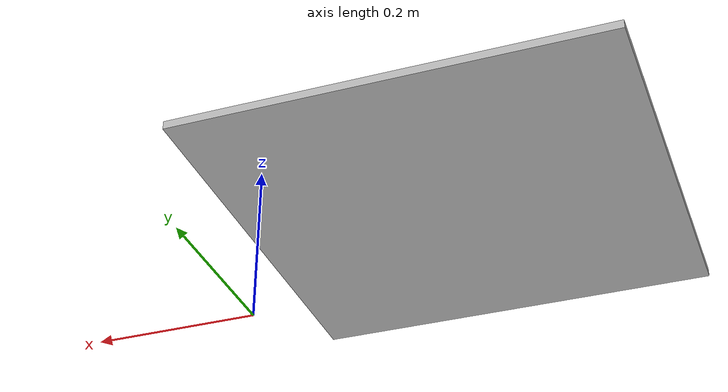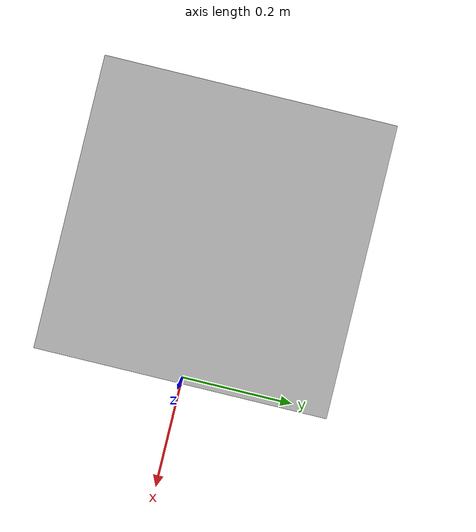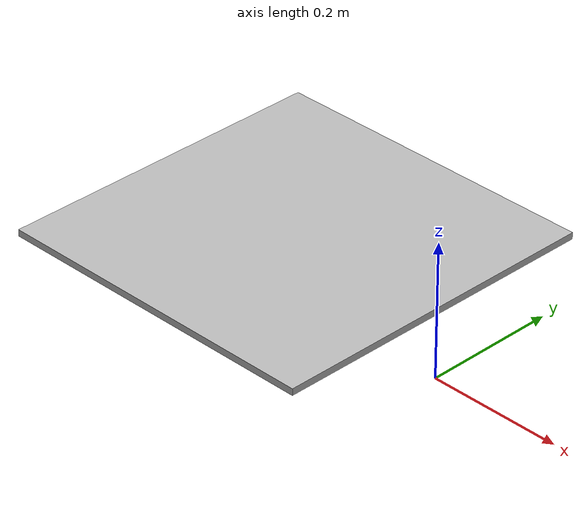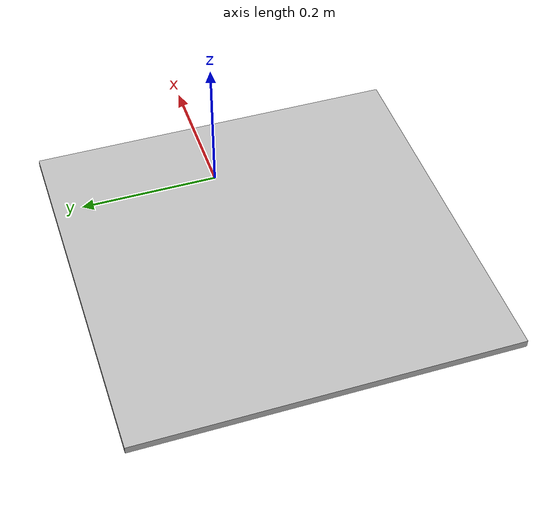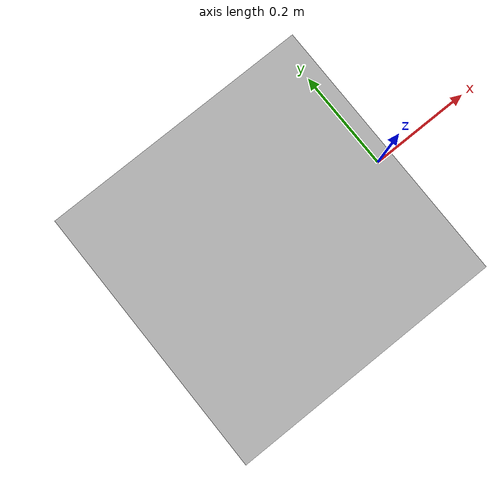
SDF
<?xml version="1.0" ?>
<sdf version="1.5">
  <model name="ArucoMarker">
    <static>true</static>
    <link name="link">
      <pose>0 0 0.1 0 -1.57079632679 0</pose>
      <visual name="visual">
        <geometry>
          <mesh>
            <uri>model://arucoMarker23/meshes/ArucoMarker23.dae</uri>
          <scale>1 1 1</scale></mesh>
        </geometry>
      </visual>
    </link>
    <plugin name="mark_driver" filename="libmark_plugin.so">
      <shape>circle</shape>
    </plugin>
  </model>
</sdf>
